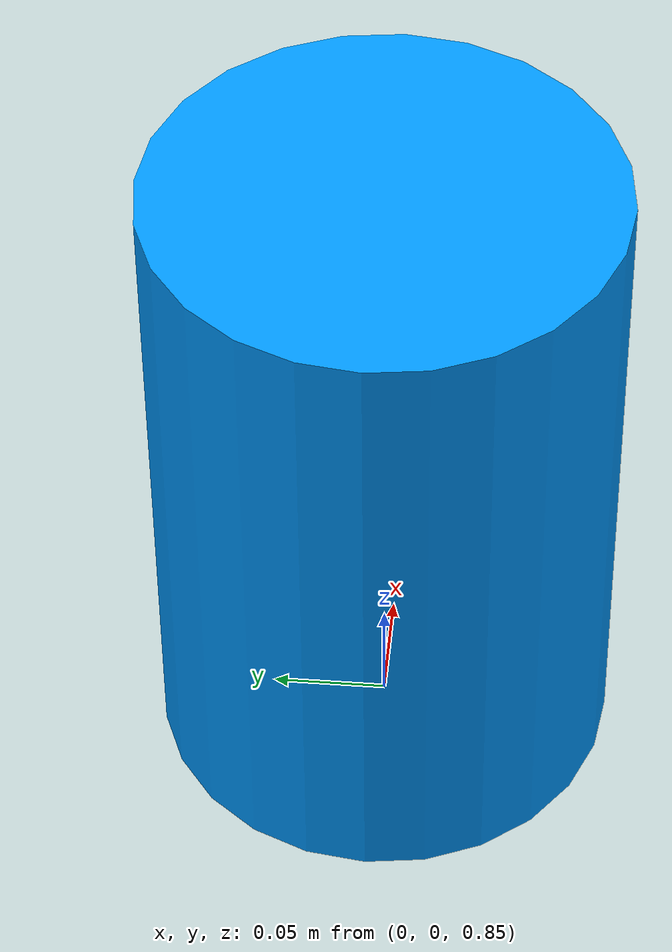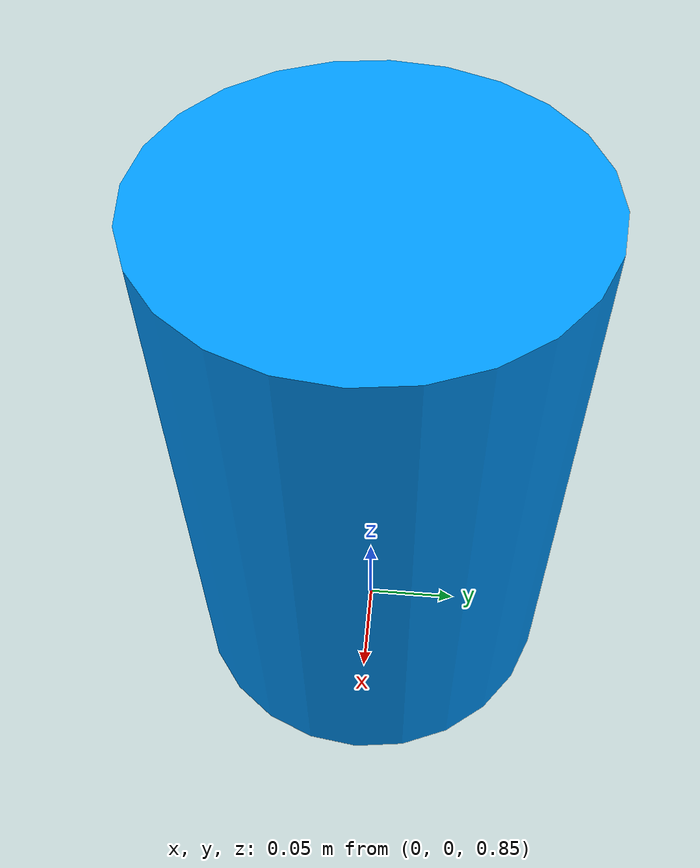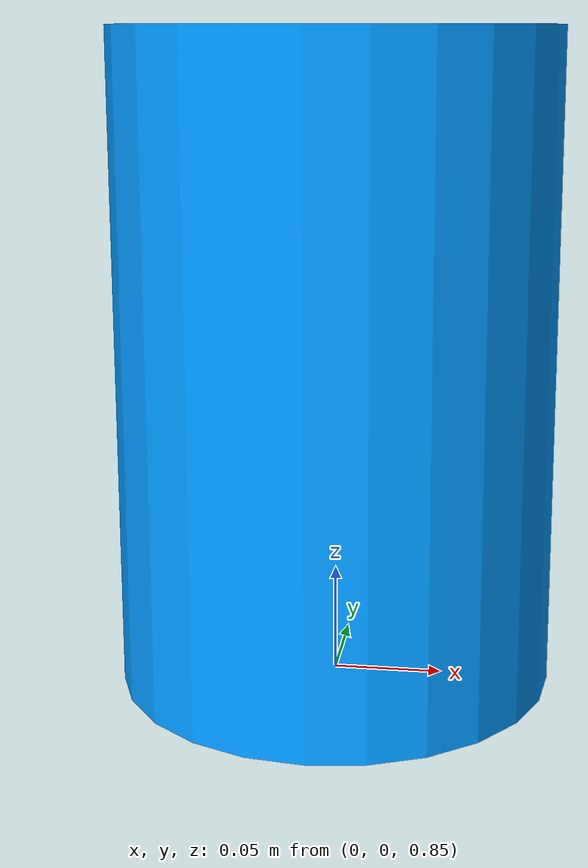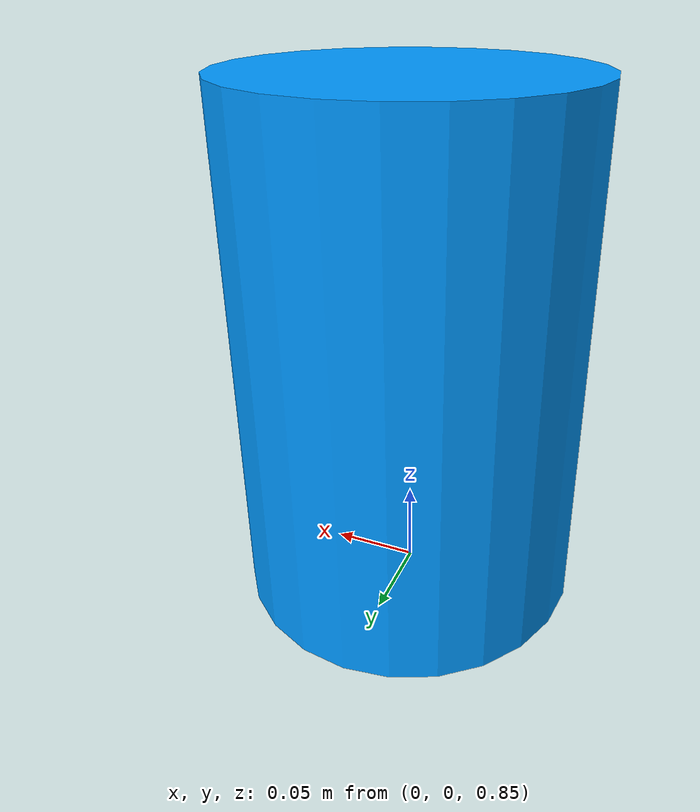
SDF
<?xml version="1.0"?>
<sdf version="1.9">
  <model name="depth_cam">
    <static>true</static>
    <pose>0 0 1 0 0 0</pose> <!-- base position -->

    <link name="camera_link">
      <!-- Visible cylinder (to represent the camera) -->
      <visual name="camera_visual">
        <geometry>
          <cylinder>
            <radius>0.1</radius>
            <length>0.3</length>
          </cylinder>
        </geometry>
        <material>
          <ambient>0.0 0.6 1.0 1</ambient>
          <diffuse>0.0 0.6 1.0 1</diffuse>
          <specular>0.3 0.3 0.3 1</specular>
        </material>
      </visual>

      <!-- Depth + RGB camera sensor -->
      <sensor name="depth_camera_sensor" type="rgbd_camera">
        <!-- Position sensor slightly above base of cylinder -->
        <pose>0 0 0.15 0 0 0</pose>

        <camera>
          <horizontal_fov>1.047</horizontal_fov>
          <image>
            <width>640</width>
            <height>480</height>
            <format>R8G8B8</format>
          </image>
          <clip>
            <near>0.1</near>
            <far>20.0</far>
          </clip>
          <depth_camera>
            <clip>
              <near>0.1</near>
              <far>20.0</far>
            </clip>
          </depth_camera>
        </camera>

        <update_rate>30</update_rate>
        <topic>camera</topic>
        <always_on>true</always_on>
        <visualize>true</visualize>
      </sensor>
    </link>
  </model>
</sdf>
